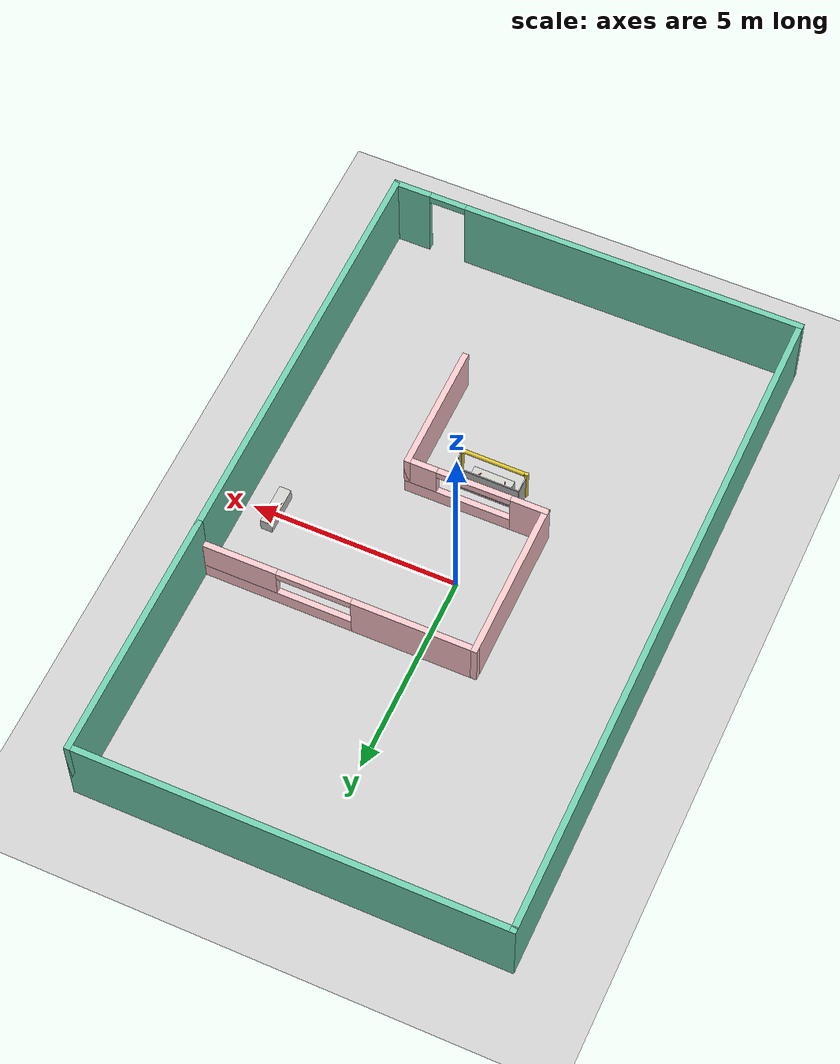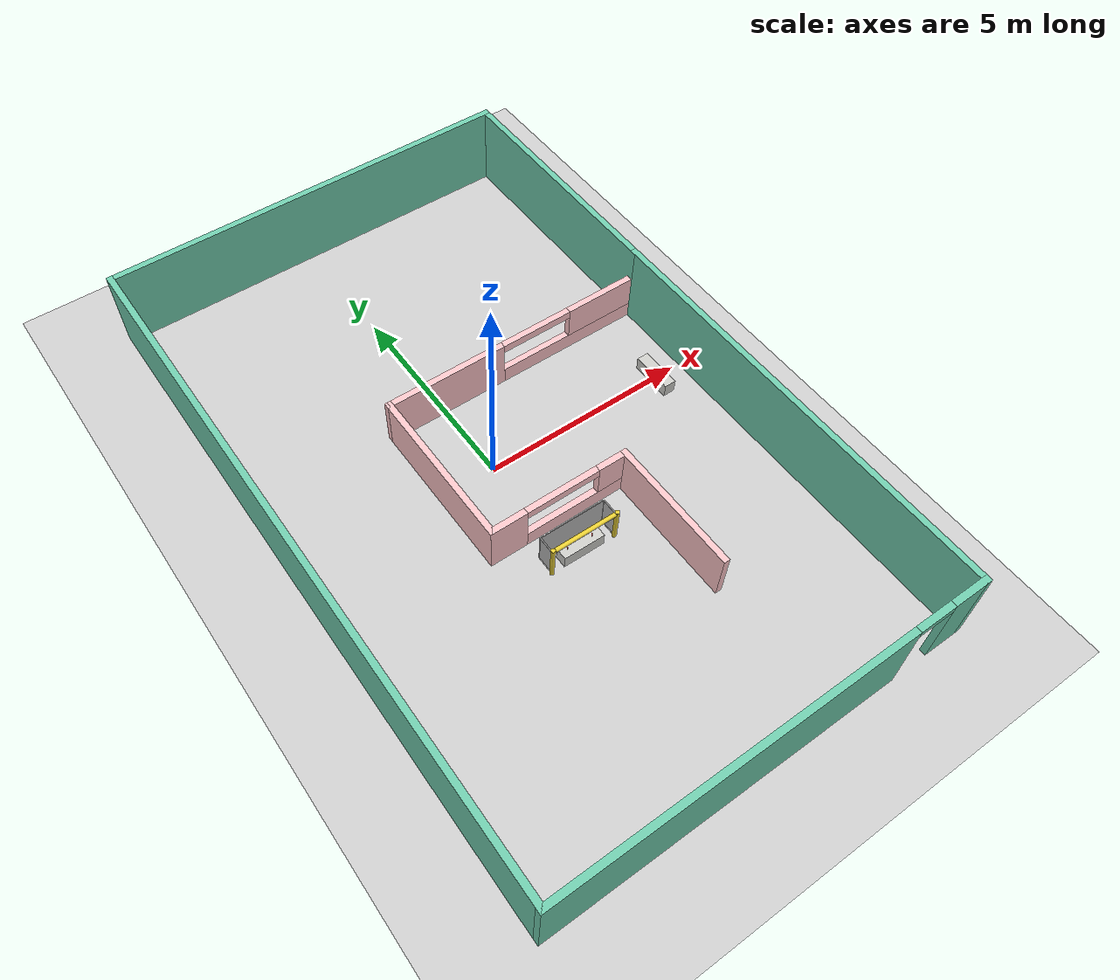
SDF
<sdf version="1.6">
 <world name="default">
  <model name="ground_plane">
   <static>1</static>
   <link name="link">
    <collision name="collision">
     <geometry><plane><normal>0 0 1</normal><size>100 100</size></plane></geometry>
     <surface>
      <contact><collide_bitmask>65535</collide_bitmask></contact>
      <friction><ode><mu>100</mu><mu2>50</mu2></ode></friction>
     </surface>
    </collision>
    <visual name="visual">
     <cast_shadows>0</cast_shadows>
     <geometry><plane><normal>0 0 1</normal><size>100 100</size></plane></geometry>
     <material>
      <script><uri>file://media/materials/scripts/gazebo.material</uri><name>Gazebo/Grey</name></script>
     </material>
    </visual>
   </link>
  </model>
  <model name="small_table_1">
   <link name="link">
    <inertial>
     <mass>1000</mass>
     <inertia><ixx>92.2402</ixx><ixy>0</ixy><ixz>0</ixz><iyy>15.7852</iyy><iyz>0</iyz><izz>90.2116</izz></inertia>
    </inertial>
    <visual name="visual">
     <geometry><box><size>0.287297 1 0.326929</size></box></geometry>
     <material>
      <script><name>Gazebo/CeilingTiled</name><uri>file://media/materials/scripts/gazebo.material</uri></script>
      <shader type="pixel"><normal_map>__default__</normal_map></shader>
      <ambient>0.7 0.7 0.7 1</ambient>
      <diffuse>0.9 0.9 0.9 1</diffuse>
      <specular>0.01 0.01 0.01 1</specular>
      <emissive>0 0 0 1</emissive>
     </material>
    </visual>
    <collision name="collision">
     <geometry><box><size>0.287297 1 0.326929</size></box></geometry>
     <surface>
      <friction>
       <ode><mu>1</mu><mu2>1</mu2><fdir1>0 0 0</fdir1><slip1>0</slip1><slip2>0</slip2></ode>
       <torsional>
        <coefficient>1</coefficient>
        <patch_radius>0</patch_radius>
        <surface_radius>0</surface_radius>
        <use_patch_radius>1</use_patch_radius>
        <ode><slip>0</slip></ode>
       </torsional>
      </friction>
      <bounce><restitution_coefficient>0</restitution_coefficient><threshold>1e+06</threshold></bounce>
      <contact>
       <collide_without_contact>0</collide_without_contact>
       <collide_without_contact_bitmask>1</collide_without_contact_bitmask>
       <collide_bitmask>1</collide_bitmask>
       <ode>
        <soft_cfm>0</soft_cfm>
        <soft_erp>0.2</soft_erp>
        <kp>1e+13</kp>
        <kd>1</kd>
        <max_vel>0.01</max_vel>
        <min_depth>0</min_depth>
       </ode>
       <bullet>
        <split_impulse>1</split_impulse>
        <split_impulse_penetration_threshold>-0.01</split_impulse_penetration_threshold>
        <soft_cfm>0</soft_cfm>
        <soft_erp>0.2</soft_erp>
        <kp>1e+13</kp>
        <kd>1</kd>
       </bullet>
      </contact>
     </surface>
    </collision>
   </link>
   <static>0</static>
   <pose>0.312233 -2.69344 0.173955 0 -0 1.55821</pose>
  </model>
  <model name="RoboCup 2014 SPL Goal_0">
   <static>1</static>
   <link name="left_post">
    <pose>0 0.8 0.45 0 -0 0</pose>
    <collision name="collision">
     <geometry><cylinder><radius>0.05</radius><length>0.9</length></cylinder></geometry>
    </collision>
    <visual name="visual">
     <geometry><cylinder><radius>0.05</radius><length>0.9</length></cylinder></geometry>
     <material>
      <script><uri>file://media/materials/scripts/gazebo.material</uri><name>Gazebo/ZincYellow</name></script>
     </material>
    </visual>
   </link>
   <link name="left_support_horiz_lower">
    <pose>0.24 0.8 0.01 0 -0 0</pose>
    <collision name="collision"><geometry><box><size>0.38 0.02 0.02</size></box></geometry></collision>
    <visual name="visual">
     <geometry><box><size>0.38 0.02 0.02</size></box></geometry>
     <material>
      <script><uri>file://media/materials/scripts/gazebo.material</uri><name>Gazebo/White</name></script>
     </material>
    </visual>
   </link>
   <link name="left_support_horiz_upper">
    <pose>0.24 0.8 0.79 0 -0 0</pose>
    <collision name="collision"><geometry><box><size>0.38 0.02 0.02</size></box></geometry></collision>
    <visual name="visual">
     <geometry><box><size>0.38 0.02 0.02</size></box></geometry>
     <material>
      <script><uri>file://media/materials/scripts/gazebo.material</uri><name>Gazebo/White</name></script>
     </material>
    </visual>
   </link>
   <link name="left_support_vertical">
    <pose>0.44 0.8 0.4 3.14159 1.57079 3.14159</pose>
    <collision name="collision"><geometry><box><size>0.8 0.02 0.02</size></box></geometry></collision>
    <visual name="visual">
     <geometry><box><size>0.8 0.02 0.02</size></box></geometry>
     <material>
      <script><uri>file://media/materials/scripts/gazebo.material</uri><name>Gazebo/White</name></script>
     </material>
    </visual>
   </link>
   <link name="right_support_horiz_lower">
    <pose>0.24 -0.8 0.01 0 -0 0</pose>
    <collision name="collision"><geometry><box><size>0.38 0.02 0.02</size></box></geometry></collision>
    <visual name="visual">
     <geometry><box><size>0.38 0.02 0.02</size></box></geometry>
     <material>
      <script><uri>file://media/materials/scripts/gazebo.material</uri><name>Gazebo/White</name></script>
     </material>
    </visual>
   </link>
   <link name="right_support_horiz_upper">
    <pose>0.24 -0.8 0.79 0 -0 0</pose>
    <collision name="collision"><geometry><box><size>0.38 0.02 0.02</size></box></geometry></collision>
    <visual name="visual">
     <geometry><box><size>0.38 0.02 0.02</size></box></geometry>
     <material>
      <script><uri>file://media/materials/scripts/gazebo.material</uri><name>Gazebo/White</name></script>
     </material>
    </visual>
   </link>
   <link name="right_support_vertical">
    <pose>0.44 -0.8 0.4 3.14159 1.57079 3.14159</pose>
    <collision name="collision"><geometry><box><size>0.8 0.02 0.02</size></box></geometry></collision>
    <visual name="visual">
     <geometry><box><size>0.8 0.02 0.02</size></box></geometry>
     <material>
      <script><uri>file://media/materials/scripts/gazebo.material</uri><name>Gazebo/White</name></script>
     </material>
    </visual>
   </link>
   <link name="center_support_horiz_lower">
    <pose>0.44 0 0.01 3.14159 1.57079 3.14159</pose>
    <collision name="collision"><geometry><box><size>0.02 1.58 0.02</size></box></geometry></collision>
    <visual name="visual">
     <geometry><box><size>0.02 1.58 0.02</size></box></geometry>
     <material>
      <script><uri>file://media/materials/scripts/gazebo.material</uri><name>Gazebo/White</name></script>
     </material>
    </visual>
   </link>
   <link name="center_support_horiz_upper">
    <pose>0.44 0 0.79 3.14159 1.57079 3.14159</pose>
    <collision name="collision"><geometry><box><size>0.02 1.58 0.02</size></box></geometry></collision>
    <visual name="visual">
     <geometry><box><size>0.02 1.58 0.02</size></box></geometry>
     <material>
      <script><uri>file://media/materials/scripts/gazebo.material</uri><name>Gazebo/White</name></script>
     </material>
    </visual>
   </link>
   <link name="right_post">
    <pose>0 -0.8 0.45 0 -0 0</pose>
    <collision name="collision">
     <geometry><cylinder><radius>0.05</radius><length>0.9</length></cylinder></geometry>
    </collision>
    <visual name="visual">
     <geometry><cylinder><radius>0.05</radius><length>0.9</length></cylinder></geometry>
     <material>
      <script><uri>file://media/materials/scripts/gazebo.material</uri><name>Gazebo/ZincYellow</name></script>
     </material>
    </visual>
   </link>
   <link name="crossbar">
    <pose>0 0 0.85 1.57 1.57 0</pose>
    <collision name="collision">
     <geometry><cylinder><radius>0.05</radius><length>1.5</length></cylinder></geometry>
    </collision>
    <visual name="visual">
     <geometry><cylinder><radius>0.05</radius><length>1.5</length></cylinder></geometry>
     <material>
      <script><uri>file://media/materials/scripts/gazebo.material</uri><name>Gazebo/ZincYellow</name></script>
     </material>
    </visual>
   </link>
   <link name="center_net">
    <pose>0.44 0 0.4 0 -0 0</pose>
    <collision name="collision"><geometry><box><size>0.01 1.6 0.8</size></box></geometry></collision>
    <visual name="visual">
     <geometry><box><size>0.01 1.6 0.8</size></box></geometry>
     <material>
      <script>
       <uri>model://robocup09_spl_field/materials/scripts/</uri>
       <uri>model://robocup09_spl_field/materials/textures/</uri>
       <name>RoboCup/Net</name>
      </script>
     </material>
    </visual>
   </link>
   <link name="left_net">
    <pose>0.24 0.8 0.4 0 -0 0</pose>
    <collision name="collision"><geometry><box><size>0.38 0.01 0.76</size></box></geometry></collision>
    <visual name="visual">
     <geometry><box><size>0.38 0.01 0.76</size></box></geometry>
     <material>
      <script>
       <uri>model://robocup09_spl_field/materials/scripts/</uri>
       <uri>model://robocup09_spl_field/materials/textures/</uri>
       <name>RoboCup/Net</name>
      </script>
     </material>
    </visual>
   </link>
   <link name="right_net">
    <pose>0.24 -0.8 0.4 0 -0 0</pose>
    <collision name="collision"><geometry><box><size>0.38 0.01 0.76</size></box></geometry></collision>
    <visual name="visual">
     <geometry><box><size>0.38 0.01 0.76</size></box></geometry>
     <material>
      <script>
       <uri>model://robocup09_spl_field/materials/scripts/</uri>
       <uri>model://robocup09_spl_field/materials/textures/</uri>
       <name>RoboCup/Net</name>
      </script>
     </material>
    </visual>
   </link>
   <pose>0.317115 -2.80323 -0 0 -0 1.56097</pose>
  </model>
  <model name="Wall_v9">
   <pose>0.22304 -0.19383 0 0 -0 0</pose>
   <link name="Wall_0">
    <pose>1.75 2.162 0 0 -0 0</pose>
    <visual name="Wall_0_Visual_0">
     <pose>-1.86527 0 0.6 0 -0 0</pose>
     <geometry><box><size>3.01945 0.15 1.2</size></box></geometry>
     <material>
      <script><uri>file://media/materials/scripts/gazebo.material</uri><name>Gazebo/Grey</name></script>
      <ambient>1 0.772549 0.784314 1</ambient>
     </material>
     <meta><layer>0</layer></meta>
    </visual>
    <collision name="Wall_0_Collision_0">
     <geometry><box><size>3.01945 0.15 1.2</size></box></geometry>
     <pose>-1.86527 0 0.6 0 -0 0</pose>
    </collision>
    <visual name="Wall_0_Visual_1">
     <pose>1.50973 0 0.2 0 -0 0</pose>
     <geometry><box><size>3.73055 0.15 0.4</size></box></geometry>
     <material>
      <script><uri>file://media/materials/scripts/gazebo.material</uri><name>Gazebo/Grey</name></script>
      <ambient>1 0.772549 0.784314 1</ambient>
     </material>
     <meta><layer>0</layer></meta>
    </visual>
    <collision name="Wall_0_Collision_1">
     <geometry><box><size>3.73055 0.15 0.4</size></box></geometry>
     <pose>1.50973 0 0.2 0 -0 0</pose>
    </collision>
    <visual name="Wall_0_Visual_2">
     <pose>2.40973 0 0.8 0 -0 0</pose>
     <geometry><box><size>1.93054 0.15 0.8</size></box></geometry>
     <material>
      <script><uri>file://media/materials/scripts/gazebo.material</uri><name>Gazebo/Grey</name></script>
      <ambient>1 0.772549 0.784314 1</ambient>
     </material>
     <meta><layer>0</layer></meta>
    </visual>
    <collision name="Wall_0_Collision_2">
     <geometry><box><size>1.93054 0.15 0.8</size></box></geometry>
     <pose>2.40973 0 0.8 0 -0 0</pose>
    </collision>
    <visual name="Wall_0_Visual_3">
     <pose>0.544455 0 1.1 0 -0 0</pose>
     <geometry><box><size>1.8 0.15 0.2</size></box></geometry>
     <material>
      <script><uri>file://media/materials/scripts/gazebo.material</uri><name>Gazebo/Grey</name></script>
      <ambient>1 0.772549 0.784314 1</ambient>
     </material>
     <meta><layer>0</layer></meta>
    </visual>
    <collision name="Wall_0_Collision_3">
     <geometry><box><size>1.8 0.15 0.2</size></box></geometry>
     <pose>0.544455 0 1.1 0 -0 0</pose>
    </collision>
   </link>
   <link name="Wall_10">
    <collision name="Wall_10_Collision">
     <geometry><box><size>6.15 0.15 2</size></box></geometry>
     <pose>0 0 1 0 -0 0</pose>
    </collision>
    <visual name="Wall_10_Visual">
     <pose>0 0 1 0 -0 0</pose>
     <geometry><box><size>6.15 0.15 2</size></box></geometry>
     <material>
      <script><uri>file://media/materials/scripts/gazebo.material</uri><name>Gazebo/Grey</name></script>
      <ambient>0.435294 0.796078 0.67451 1</ambient>
     </material>
     <meta><layer>0</layer></meta>
    </visual>
    <pose>5.05 5.162 0 0 -0 -1.5708</pose>
   </link>
   <link name="Wall_2">
    <collision name="Wall_2_Collision">
     <geometry><box><size>4 0.15 1.2</size></box></geometry>
     <pose>0 0 0.6 0 -0 0</pose>
    </collision>
    <visual name="Wall_2_Visual">
     <pose>0 0 0.6 0 -0 0</pose>
     <geometry><box><size>4 0.15 1.2</size></box></geometry>
     <material>
      <script><uri>file://media/materials/scripts/gazebo.material</uri><name>Gazebo/Grey</name></script>
      <ambient>1 0.772549 0.784314 1</ambient>
     </material>
     <meta><layer>0</layer></meta>
    </visual>
    <pose>-1.55 0.237003 0 0 -0 -1.5708</pose>
   </link>
   <link name="Wall_3">
    <pose>0.125 -1.688 0 0 -0 0</pose>
    <visual name="Wall_3_Visual_0">
     <pose>-1.29667 0 0.6 0 -0 0</pose>
     <geometry><box><size>0.906669 0.15 1.2</size></box></geometry>
     <material>
      <script><uri>file://media/materials/scripts/gazebo.material</uri><name>Gazebo/Grey</name></script>
      <ambient>1 0.772549 0.784314 1</ambient>
     </material>
     <meta><layer>0</layer></meta>
    </visual>
    <collision name="Wall_3_Collision_0">
     <geometry><box><size>0.906669 0.15 1.2</size></box></geometry>
     <pose>-1.29667 0 0.6 0 -0 0</pose>
    </collision>
    <visual name="Wall_3_Visual_1">
     <pose>0.453334 0 0.2 0 -0 0</pose>
     <geometry><box><size>2.59333 0.15 0.4</size></box></geometry>
     <material>
      <script><uri>file://media/materials/scripts/gazebo.material</uri><name>Gazebo/Grey</name></script>
      <ambient>1 0.772549 0.784314 1</ambient>
     </material>
     <meta><layer>0</layer></meta>
    </visual>
    <collision name="Wall_3_Collision_1">
     <geometry><box><size>2.59333 0.15 0.4</size></box></geometry>
     <pose>0.453334 0 0.2 0 -0 0</pose>
    </collision>
    <visual name="Wall_3_Visual_2">
     <pose>1.35333 0 0.8 0 -0 0</pose>
     <geometry><box><size>0.793331 0.15 0.8</size></box></geometry>
     <material>
      <script><uri>file://media/materials/scripts/gazebo.material</uri><name>Gazebo/Grey</name></script>
      <ambient>1 0.772549 0.784314 1</ambient>
     </material>
     <meta><layer>0</layer></meta>
    </visual>
    <collision name="Wall_3_Collision_2">
     <geometry><box><size>0.793331 0.15 0.8</size></box></geometry>
     <pose>1.35333 0 0.8 0 -0 0</pose>
    </collision>
    <visual name="Wall_3_Visual_3">
     <pose>0.056669 0 1.1 0 -0 0</pose>
     <geometry><box><size>1.8 0.15 0.2</size></box></geometry>
     <material>
      <script><uri>file://media/materials/scripts/gazebo.material</uri><name>Gazebo/Grey</name></script>
      <ambient>1 0.772549 0.784314 1</ambient>
     </material>
     <meta><layer>0</layer></meta>
    </visual>
    <collision name="Wall_3_Collision_3">
     <geometry><box><size>1.8 0.15 0.2</size></box></geometry>
     <pose>0.056669 0 1.1 0 -0 0</pose>
    </collision>
   </link>
   <link name="Wall_4">
    <collision name="Wall_4_Collision">
     <geometry><box><size>3.25 0.15 1.2</size></box></geometry>
     <pose>0 0 0.6 0 -0 0</pose>
    </collision>
    <visual name="Wall_4_Visual">
     <pose>0 0 0.6 0 -0 0</pose>
     <geometry><box><size>3.25 0.15 1.2</size></box></geometry>
     <material>
      <script><uri>file://media/materials/scripts/gazebo.material</uri><name>Gazebo/Grey</name></script>
      <ambient>1 0.772549 0.784314 1</ambient>
     </material>
     <meta><layer>0</layer></meta>
    </visual>
    <pose>1.8 -3.238 0 0 -0 -1.5708</pose>
   </link>
   <link name="Wall_6">
    <collision name="Wall_6_Collision">
     <geometry><box><size>10.473 0.15 2</size></box></geometry>
     <pose>0 0 1 0 -0 0</pose>
    </collision>
    <visual name="Wall_6_Visual">
     <pose>0 0 1 0 -0 0</pose>
     <geometry><box><size>10.473 0.15 2</size></box></geometry>
     <material>
      <script><uri>file://media/materials/scripts/gazebo.material</uri><name>Gazebo/Grey</name></script>
      <ambient>0.435294 0.796078 0.67451 1</ambient>
     </material>
     <meta><layer>0</layer></meta>
    </visual>
    <pose>5.05 -2.9995 0 0 -0 -1.5708</pose>
   </link>
   <link name="Wall_7">
    <pose>-0 -8.1615 0 0 -0 -3.14149</pose>
    <visual name="Wall_7_Visual_0">
     <pose>-4.64747 0 1 0 -0 0</pose>
     <geometry><box><size>0.955052 0.15 2</size></box></geometry>
     <material>
      <script><uri>file://media/materials/scripts/gazebo.material</uri><name>Gazebo/Grey</name></script>
      <ambient>0.435294 0.796078 0.67451 1</ambient>
     </material>
     <meta><layer>0</layer></meta>
    </visual>
    <collision name="Wall_7_Collision_0">
     <geometry><box><size>0.955052 0.15 2</size></box></geometry>
     <pose>-4.64747 0 1 0 -0 0</pose>
    </collision>
    <visual name="Wall_7_Visual_1">
     <pose>0.927526 0 1 0 -0 0</pose>
     <geometry><box><size>8.39495 0.15 2</size></box></geometry>
     <material>
      <script><uri>file://media/materials/scripts/gazebo.material</uri><name>Gazebo/Grey</name></script>
      <ambient>0.435294 0.796078 0.67451 1</ambient>
     </material>
     <meta><layer>0</layer></meta>
    </visual>
    <collision name="Wall_7_Collision_1">
     <geometry><box><size>8.39495 0.15 2</size></box></geometry>
     <pose>0.927526 0 1 0 -0 0</pose>
    </collision>
    <visual name="Wall_7_Visual_2">
     <pose>-3.71995 0 1.9 0 -0 0</pose>
     <geometry><box><size>0.9 0.15 0.2</size></box></geometry>
     <material>
      <script><uri>file://media/materials/scripts/gazebo.material</uri><name>Gazebo/Grey</name></script>
      <ambient>0.435294 0.796078 0.67451 1</ambient>
     </material>
     <meta><layer>0</layer></meta>
    </visual>
    <collision name="Wall_7_Collision_2">
     <geometry><box><size>0.9 0.15 0.2</size></box></geometry>
     <pose>-3.71995 0 1.9 0 -0 0</pose>
    </collision>
   </link>
   <link name="Wall_8">
    <collision name="Wall_8_Collision">
     <geometry><box><size>16.4735 0.15 2</size></box></geometry>
     <pose>0 0 1 0 -0 0</pose>
    </collision>
    <visual name="Wall_8_Visual">
     <pose>0 0 1 0 -0 0</pose>
     <geometry><box><size>16.4735 0.15 2</size></box></geometry>
     <material>
      <script><uri>file://media/materials/scripts/gazebo.material</uri><name>Gazebo/Grey</name></script>
      <ambient>0.435294 0.796078 0.67451 1</ambient>
     </material>
     <meta><layer>0</layer></meta>
    </visual>
    <pose>-5.05 3e-06 0 0 -0 1.5708</pose>
   </link>
   <link name="Wall_9">
    <collision name="Wall_9_Collision">
     <geometry><box><size>10.25 0.15 2</size></box></geometry>
     <pose>0 0 1 0 -0 0</pose>
    </collision>
    <visual name="Wall_9_Visual">
     <pose>0 0 1 0 -0 0</pose>
     <geometry><box><size>10.25 0.15 2</size></box></geometry>
     <material>
      <script><uri>file://media/materials/scripts/gazebo.material</uri><name>Gazebo/Grey</name></script>
      <ambient>0.435294 0.796078 0.67451 1</ambient>
     </material>
     <meta><layer>0</layer></meta>
    </visual>
    <pose>-0 8.162 0 0 -0 0</pose>
   </link>
   <static>1</static>
  </model>
  <model name="grasp_cylinder_2_0">
   <link name="link">
    <inertial>
     <mass>0.05</mass>
     <inertia>
      <ixx>2.297e-05</ixx>
      <ixy>0</ixy>
      <ixz>0</ixz>
      <iyy>2.297e-05</iyy>
      <iyz>0</iyz>
      <izz>4.31e-06</izz>
     </inertia>
    </inertial>
    <visual name="visual">
     <geometry><cylinder><radius>0.0131252</radius><length>0.0706744</length></cylinder></geometry>
     <material>
      <script><name>Gazebo/Red</name><uri>file://media/materials/scripts/gazebo.material</uri></script>
      <shader type="vertex"><normal_map>__default__</normal_map></shader>
      <ambient>1 0 0 1</ambient>
      <diffuse>0.7 0.7 0.7 1</diffuse>
      <specular>0.01 0.01 0.01 1</specular>
      <emissive>0 0 0 1</emissive>
     </material>
    </visual>
    <collision name="collision">
     <geometry><cylinder><radius>0.013125</radius><length>0.070674</length></cylinder></geometry>
     <surface>
      <friction>
       <ode><mu>100</mu><mu2>100</mu2><fdir1>0 0 0</fdir1><slip1>0</slip1><slip2>0</slip2></ode>
       <torsional>
        <coefficient>1</coefficient>
        <patch_radius>0</patch_radius>
        <surface_radius>0</surface_radius>
        <use_patch_radius>1</use_patch_radius>
        <ode><slip>0</slip></ode>
       </torsional>
      </friction>
      <bounce><restitution_coefficient>0</restitution_coefficient><threshold>1e+06</threshold></bounce>
      <contact>
       <collide_without_contact>0</collide_without_contact>
       <collide_without_contact_bitmask>1</collide_without_contact_bitmask>
       <collide_bitmask>1</collide_bitmask>
       <ode>
        <soft_cfm>0</soft_cfm>
        <soft_erp>0.2</soft_erp>
        <kp>1e+13</kp>
        <kd>1</kd>
        <max_vel>0.01</max_vel>
        <min_depth>0</min_depth>
       </ode>
       <bullet>
        <split_impulse>1</split_impulse>
        <split_impulse_penetration_threshold>-0.01</split_impulse_penetration_threshold>
        <soft_cfm>0</soft_cfm>
        <soft_erp>0.2</soft_erp>
        <kp>1e+13</kp>
        <kd>1</kd>
       </bullet>
      </contact>
     </surface>
    </collision>
   </link>
   <static>0</static>
   <pose>-0.013438 -2.68104 0.372757 1.9e-05 -4.2e-05 -1.14176</pose>
  </model>
  <model name="grasp_cylinder_2_1">
   <link name="link">
    <inertial>
     <mass>0.05</mass>
     <inertia>
      <ixx>2.297e-05</ixx>
      <ixy>0</ixy>
      <ixz>0</ixz>
      <iyy>2.297e-05</iyy>
      <iyz>0</iyz>
      <izz>4.31e-06</izz>
     </inertia>
    </inertial>
    <visual name="visual">
     <geometry><cylinder><radius>0.0131252</radius><length>0.0706744</length></cylinder></geometry>
     <material>
      <script><name>Gazebo/Red</name><uri>file://media/materials/scripts/gazebo.material</uri></script>
      <shader type="vertex"><normal_map>__default__</normal_map></shader>
      <ambient>1 0 0 1</ambient>
      <diffuse>0.7 0.7 0.7 1</diffuse>
      <specular>0.01 0.01 0.01 1</specular>
      <emissive>0 0 0 1</emissive>
     </material>
    </visual>
    <collision name="collision">
     <geometry><cylinder><radius>0.013125</radius><length>0.070674</length></cylinder></geometry>
     <surface>
      <friction>
       <ode><mu>100</mu><mu2>100</mu2><fdir1>0 0 0</fdir1><slip1>0</slip1><slip2>0</slip2></ode>
       <torsional>
        <coefficient>1</coefficient>
        <patch_radius>0</patch_radius>
        <surface_radius>0</surface_radius>
        <use_patch_radius>1</use_patch_radius>
        <ode><slip>0</slip></ode>
       </torsional>
      </friction>
      <bounce><restitution_coefficient>0</restitution_coefficient><threshold>1e+06</threshold></bounce>
      <contact>
       <collide_without_contact>0</collide_without_contact>
       <collide_without_contact_bitmask>1</collide_without_contact_bitmask>
       <collide_bitmask>1</collide_bitmask>
       <ode>
        <soft_cfm>0</soft_cfm>
        <soft_erp>0.2</soft_erp>
        <kp>1e+13</kp>
        <kd>1</kd>
        <max_vel>0.01</max_vel>
        <min_depth>0</min_depth>
       </ode>
       <bullet>
        <split_impulse>1</split_impulse>
        <split_impulse_penetration_threshold>-0.01</split_impulse_penetration_threshold>
        <soft_cfm>0</soft_cfm>
        <soft_erp>0.2</soft_erp>
        <kp>1e+13</kp>
        <kd>1</kd>
       </bullet>
      </contact>
     </surface>
    </collision>
   </link>
   <static>0</static>
   <pose>0.605401 -2.69386 0.350544 -1.5708 -1.55666 2.50848</pose>
  </model>
  <model name="small_table">
   <link name="link">
    <inertial>
     <mass>1000</mass>
     <inertia><ixx>92.2402</ixx><ixy>0</ixy><ixz>0</ixz><iyy>15.7852</iyy><iyz>0</iyz><izz>90.2116</izz></inertia>
    </inertial>
    <visual name="visual">
     <geometry><box><size>0.287297 1 0.326929</size></box></geometry>
     <material>
      <script><name>Gazebo/CeilingTiled</name><uri>file://media/materials/scripts/gazebo.material</uri></script>
      <shader type="pixel"><normal_map>__default__</normal_map></shader>
      <ambient>0.7 0.7 0.7 1</ambient>
      <diffuse>0.9 0.9 0.9 1</diffuse>
      <specular>0.01 0.01 0.01 1</specular>
      <emissive>0 0 0 1</emissive>
     </material>
    </visual>
    <collision name="collision">
     <geometry><box><size>0.287297 1 0.326929</size></box></geometry>
     <surface>
      <friction>
       <ode><mu>1000</mu><mu2>1000</mu2><fdir1>0 0 0</fdir1><slip1>0</slip1><slip2>0</slip2></ode>
       <torsional>
        <coefficient>1</coefficient>
        <patch_radius>0</patch_radius>
        <surface_radius>0</surface_radius>
        <use_patch_radius>1</use_patch_radius>
        <ode><slip>0</slip></ode>
       </torsional>
      </friction>
      <bounce><restitution_coefficient>0</restitution_coefficient><threshold>1e+06</threshold></bounce>
      <contact>
       <collide_without_contact>0</collide_without_contact>
       <collide_without_contact_bitmask>1</collide_without_contact_bitmask>
       <collide_bitmask>1</collide_bitmask>
       <ode>
        <soft_cfm>0</soft_cfm>
        <soft_erp>0.2</soft_erp>
        <kp>1e+13</kp>
        <kd>1</kd>
        <max_vel>0.01</max_vel>
        <min_depth>0</min_depth>
       </ode>
       <bullet>
        <split_impulse>1</split_impulse>
        <split_impulse_penetration_threshold>-0.01</split_impulse_penetration_threshold>
        <soft_cfm>0</soft_cfm>
        <soft_erp>0.2</soft_erp>
        <kp>1e+13</kp>
        <kd>1</kd>
       </bullet>
      </contact>
     </surface>
    </collision>
   </link>
   <static>0</static>
   <pose>4.47331 -0.040771 0.173964 0 -0 -0.003397</pose>
  </model>
  <model name="Grasp_Sphere">
   <link name="link">
    <inertial>
     <mass>0.00274403</mass>
     <inertia>
      <ixx>3.12874e-07</ixx>
      <ixy>0</ixy>
      <ixz>0</ixz>
      <iyy>3.12874e-07</iyy>
      <iyz>0</iyz>
      <izz>3.12874e-07</izz>
     </inertia>
    </inertial>
    <visual name="visual">
     <geometry><sphere><radius>0.0168833</radius></sphere></geometry>
     <material>
      <script><name>Gazebo/Grass</name><uri>file://media/materials/scripts/gazebo.material</uri></script>
      <shader type="vertex"><normal_map>__default__</normal_map></shader>
      <ambient>1 1 1 1</ambient>
      <diffuse>1 1 1 1</diffuse>
      <specular>0 0 0 1</specular>
      <emissive>0 0 0 1</emissive>
     </material>
    </visual>
    <collision name="collision">
     <geometry><sphere><radius>0.016883</radius></sphere></geometry>
     <surface>
      <friction>
       <ode><mu>1000</mu><mu2>1000</mu2><fdir1>0 0 0</fdir1><slip1>0</slip1><slip2>0</slip2></ode>
       <torsional>
        <coefficient>1</coefficient>
        <patch_radius>0</patch_radius>
        <surface_radius>0</surface_radius>
        <use_patch_radius>1</use_patch_radius>
        <ode><slip>0</slip></ode>
       </torsional>
      </friction>
      <bounce><restitution_coefficient>0</restitution_coefficient><threshold>1e+06</threshold></bounce>
      <contact>
       <collide_without_contact>0</collide_without_contact>
       <collide_without_contact_bitmask>1</collide_without_contact_bitmask>
       <collide_bitmask>1</collide_bitmask>
       <ode>
        <soft_cfm>0</soft_cfm>
        <soft_erp>0.2</soft_erp>
        <kp>1e+13</kp>
        <kd>1</kd>
        <max_vel>0.01</max_vel>
        <min_depth>0</min_depth>
       </ode>
       <bullet>
        <split_impulse>1</split_impulse>
        <split_impulse_penetration_threshold>-0.01</split_impulse_penetration_threshold>
        <soft_cfm>0</soft_cfm>
        <soft_erp>0.2</soft_erp>
        <kp>1e+13</kp>
        <kd>1</kd>
       </bullet>
      </contact>
     </surface>
    </collision>
   </link>
   <static>0</static>
   <pose>4.37016 -0.128775 0.354312 -0.003915 -0 0</pose>
  </model>
 </world>
</sdf>
